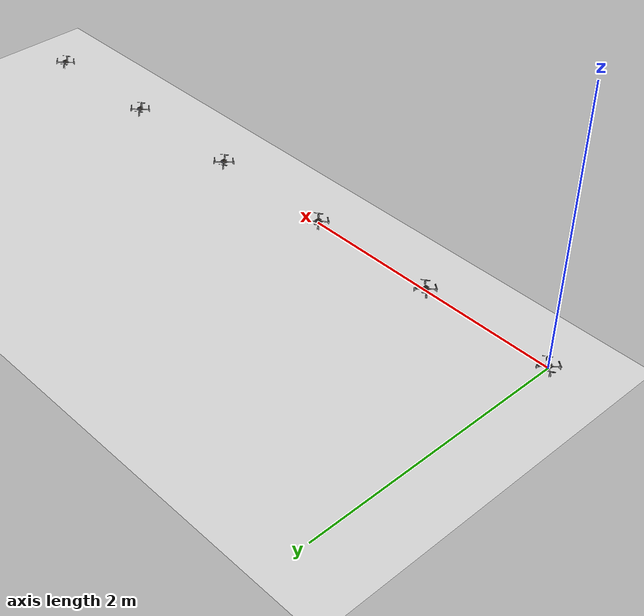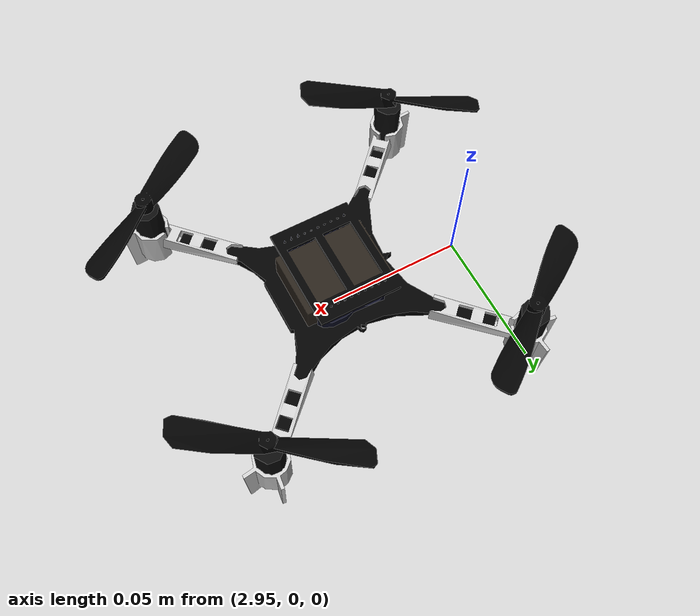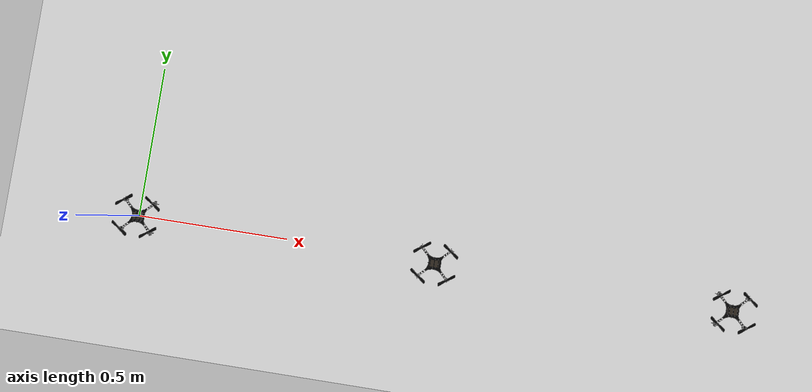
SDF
<?xml version="1.0"?>

<sdf version='1.9'>
  <world name='empty'>
    <physics name='1ms' type='ignored'>
      <max_step_size>0.001</max_step_size>
      <real_time_factor>1.0</real_time_factor>
    </physics>
    <plugin name='ignition::gazebo::systems::Physics' filename='ignition-gazebo-physics-system'/>
    <plugin name='ignition::gazebo::systems::UserCommands' filename='ignition-gazebo-user-commands-system'/>
    <plugin name='ignition::gazebo::systems::SceneBroadcaster' filename='ignition-gazebo-scene-broadcaster-system'/>
    <plugin
      filename="ignition-gazebo-user-commands-system"
      name="ignition::gazebo::systems::UserCommands">
    </plugin>
    <plugin
      filename="ignition-gazebo-sensors-system"
      name="ignition::gazebo::systems::Sensors">
      <render_engine>ogre2</render_engine>
    </plugin>
    <light name='sun' type='directional'>
      <cast_shadows>true</cast_shadows>
      <pose>0 0 10 0 0 0</pose>
      <diffuse>0.8 0.8 0.8 1</diffuse>
      <specular>0.2 0.2 0.2 1</specular>
      <attenuation>
        <range>1000</range>
        <constant>0.9</constant>
        <linear>0.01</linear>
        <quadratic>0.001</quadratic>
      </attenuation>
      <direction>-0.5 0.1 -0.9</direction>
      <spot>
        <inner_angle>0</inner_angle>
        <outer_angle>0</outer_angle>
        <falloff>0</falloff>
      </spot>
    </light>
    <gravity>0 0 0</gravity>
    <magnetic_field>5.5645e-6 22.8758e-6 -42.3884e-6</magnetic_field>
    <atmosphere type='adiabatic'/>
    <scene>
      <ambient>0.4 0.4 0.4 1.0</ambient>
      <background>.7 .7 .7 1</background>
      <shadows>true</shadows>
    </scene>
    <model name='ground_plane'>
      <static>true</static>
      <link name='link'>
        <collision name='collision'>
          <geometry>
            <plane>
              <normal>0 0 1</normal>
              <size>100 100</size>
            </plane>
          </geometry>
          <surface>
            <friction>
              <ode/>
            </friction>
            <bounce/>
            <contact/>
          </surface>
        </collision>
        <visual name='visual'>
          <geometry>
            <plane>
              <normal>0 0 1</normal>
              <size>100 100</size>
            </plane>
          </geometry>
          <material>
            <ambient>0.8 0.8 0.8 1</ambient>
            <diffuse>0.8 0.8 0.8 1</diffuse>
            <specular>0.8 0.8 0.8 1</specular>
          </material>
          <plugin name='__default__' filename='__default__'/>
        </visual>
      </link>
      <plugin name='__default__' filename='__default__'/>
      <pose>0 0 0 0 -0 0</pose>
    </model>
    <include>
      <uri>model://crazyflie</uri>
      <name>crazyflie</name>
      <pose>0 0 0.015 0 0 0</pose>
      <plugin filename="NoPhysicsCrazyflieController"
              name="no_physics_crazyflie_controller::NoPhysicsCrazyflieController">
      </plugin>
    </include>
    <include>
      <uri>model://crazyflie</uri>
      <name>crazyflie1</name>
      <pose>1 0 0.015 0 0 0</pose>
      <plugin filename="NoPhysicsCrazyflieController"
              name="no_physics_crazyflie_controller::NoPhysicsCrazyflieController">
      </plugin>
    </include>
        <include>
      <uri>model://crazyflie</uri>
      <name>crazyflie2</name>
      <pose>2 0 0.015 0 0 0</pose>
      <plugin filename="NoPhysicsCrazyflieController"
              name="no_physics_crazyflie_controller::NoPhysicsCrazyflieController">
      </plugin>
    </include>
        <include>
      <uri>model://crazyflie</uri>
      <name>crazyflie3</name>
      <pose>3 0 0.015 0 0 0</pose>
      <plugin filename="NoPhysicsCrazyflieController"
              name="no_physics_crazyflie_controller::NoPhysicsCrazyflieController">
      </plugin>
    </include>
        <include>
      <uri>model://crazyflie</uri>
      <name>crazyflie4</name>
      <pose>4 0 0.015 0 0 0</pose>
      <plugin filename="NoPhysicsCrazyflieController"
              name="no_physics_crazyflie_controller::NoPhysicsCrazyflieController">
      </plugin>
    </include>
        <include>
      <uri>model://crazyflie</uri>
      <name>crazyflie5</name>
      <pose>5 0 0.015 0 0 0</pose>
      <plugin filename="NoPhysicsCrazyflieController"
              name="no_physics_crazyflie_controller::NoPhysicsCrazyflieController">
      </plugin>
    </include>

  </world>
</sdf>

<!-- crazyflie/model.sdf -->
<sdf version="1.8">
    <model name="crazyflie">
        <pose>0 0 0.0 0 0 3.14</pose>
        <link name="crazyflie/body">
        <inertial>
            <pose frame="">0 0 0 0 0 0</pose>
            <mass>0.025</mass>
            <inertia>
                <ixx>0.000016572</ixx>
                <ixy>0.00</ixy>
                <ixz>0.00</ixz>
                <iyy>0.000016656</iyy>
                <iyz>0.00000</iyz>
                <izz>0.000029262</izz>
            </inertia>
        </inertial>
        <collision name="crazyflie/body_collision">
            <pose frame="">0 0 0 0 0 0</pose>
            <geometry>
                <box>
                    <size>0.10 0.10 0.03</size>
                </box>
            </geometry>
        </collision>
        <visual name="crazyflie/body_visual">
            <pose frame="">0 0 0 0 -0 0</pose>
            <geometry>
                <mesh>
                    <scale>1 1 1</scale>
                    <uri>model://crazyflie/meshes/crazyflie_body.dae</uri>
                </mesh>
            </geometry>
        </visual>
        </link>
        <link name="crazyflie/m1_prop">
            <pose frame="">0.048 -0.048 0.021 0 0 0</pose>
            <inertial>
                <pose frame="">0 0 0 0 -0 0</pose>
                <mass>0.0008</mass>
                <inertia>
                    <ixx>0.000000002*70</ixx>
                    <iyy>0.000000167*70</iyy>
                    <izz>0.000000168*70</izz>
                    <ixy>0</ixy>
                    <ixz>0</ixz>
                    <iyz>0</iyz>
                </inertia>
            </inertial>
            <visual name="crazyflie/m1_visual">
                <pose frame="">0 0 0 0 -0 0</pose>
                <geometry>
                    <mesh>
                        <scale>1 1 1</scale>
                        <uri>model://crazyflie/meshes/crazyflie_ccw_propeller.dae</uri>
                    </mesh>
                </geometry>
            </visual>
        </link>
        <link name="crazyflie/m2_prop">
            <pose frame="">-0.048 -0.048 0.021 0 0 0</pose>
            <inertial>
                <pose frame="">0 0 0 0 -0 0</pose>
                <mass>0.0008</mass>
                <inertia>
                    <ixx>0.000000002*50</ixx>
                    <iyy>0.000000167*50</iyy>
                    <izz>0.000000168*50</izz>
                    <ixy>0</ixy>
                    <ixz>0</ixz>
                    <iyz>0</iyz>
                </inertia>
            </inertial>
            <visual name="crazyflie/m2_visual">
                <pose frame="">0 0 0 0 -0 0</pose>
                <geometry>
                    <mesh>
                        <scale>1 1 1</scale>
                        <uri>model://crazyflie/meshes/crazyflie_cw_propeller.dae</uri>
                    </mesh>
                </geometry>
            </visual>
        </link>
        <link name="crazyflie/m3_prop">
            <pose frame="">-0.048 0.048 0.021 0 0 0</pose>
            <inertial>
                <pose frame="">0 0 0 0 -0 0</pose>
                <mass>0.0008</mass>
                <inertia>
                    <ixx>0.000000002*50</ixx>
                    <iyy>0.000000167*50</iyy>
                    <izz>0.000000168*50</izz>
                    <ixy>0</ixy>
                    <ixz>0</ixz>
                    <iyz>0</iyz>
                </inertia>
            </inertial>
            <visual name="crazyflie/m3_visual">
                <pose frame="">0 0 0 0 -0 0</pose>
                <geometry>
                    <mesh>
                        <scale>1 1 1</scale>
                        <uri>model://crazyflie/meshes/crazyflie_ccw_propeller.dae</uri>
                    </mesh>
                </geometry>
            </visual>
        </link>
        <link name="crazyflie/m4_prop">
            <pose frame="">0.048 0.048 0.021 0 0 0</pose>
            <inertial>
                <pose frame="">0 0 0 0 -0 0</pose>
                <mass>0.0008</mass>
                <inertia>
                    <ixx>0.000000002*50</ixx>
                    <iyy>0.000000167*50</iyy>
                    <izz>0.000000168*50</izz>
                    <ixy>0</ixy>
                    <ixz>0</ixz>
                    <iyz>0</iyz>
                </inertia>
            </inertial>
            <visual name="crazyflie/m4_visual">
                <pose frame="">0 0 0 0 -0 0</pose>
                <geometry>
                    <mesh>
                        <scale>1 1 1</scale>
                        <uri>model://crazyflie/meshes/crazyflie_cw_propeller.dae</uri>
                    </mesh>
                </geometry>
            </visual>
        </link>
        <joint name="crazyflie/m1_joint" type="revolute">
            <child>crazyflie/m1_prop</child>
            <parent>crazyflie/body</parent>
            <axis>
                <xyz>0 0 1</xyz>
                <limit>
                    <lower>-1e+16</lower>
                    <upper>1e+16</upper>
                </limit>
                <dynamics>
                    <spring_reference>0</spring_reference>
                    <spring_stiffness>0</spring_stiffness>
                </dynamics>
                <use_parent_model_frame>1</use_parent_model_frame>
            </axis>
        </joint>
                <joint name="crazyflie/m2_joint" type="revolute">
            <child>crazyflie/m2_prop</child>
            <parent>crazyflie/body</parent>
            <axis>
                <xyz>0 0 1</xyz>
                <limit>
                    <lower>-1e+16</lower>
                    <upper>1e+16</upper>
                </limit>
                <dynamics>
                    <spring_reference>0</spring_reference>
                    <spring_stiffness>0</spring_stiffness>
                </dynamics>
                <use_parent_model_frame>1</use_parent_model_frame>
            </axis>
        </joint>
                <joint name="crazyflie/m3_joint" type="revolute">
            <child>crazyflie/m3_prop</child>
            <parent>crazyflie/body</parent>
            <axis>
                <xyz>0 0 1</xyz>
                <limit>
                    <lower>-1e+16</lower>
                    <upper>1e+16</upper>
                </limit>
                <dynamics>
                    <spring_reference>0</spring_reference>
                    <spring_stiffness>0</spring_stiffness>
                </dynamics>
                <use_parent_model_frame>1</use_parent_model_frame>
            </axis>
        </joint>
        <joint name="crazyflie/m4_joint" type="revolute">
            <child>crazyflie/m4_prop</child>
            <parent>crazyflie/body</parent>
            <axis>
                <xyz>0 0 1</xyz>
                <limit>
                    <lower>-1e+16</lower>
                    <upper>1e+16</upper>
                </limit>
                <dynamics>
                    <spring_reference>0</spring_reference>
                    <spring_stiffness>0</spring_stiffness>
                </dynamics>
                <use_parent_model_frame>1</use_parent_model_frame>
            </axis>
        </joint>
    <plugin
        filename="ignition-gazebo-multicopter-motor-model-system"
        name="ignition::gazebo::systems::MulticopterMotorModel">
        <robotNamespace>crazyflie</robotNamespace>
        <jointName>crazyflie/m1_joint</jointName>
        <linkName>crazyflie/m1_prop</linkName>
        <turningDirection>ccw</turningDirection>
        <timeConstantUp>0.0125</timeConstantUp>
        <timeConstantDown>0.025</timeConstantDown>
        <maxRotVelocity>2618</maxRotVelocity>
        <motorConstant>1.2819184e-8</motorConstant>
        <momentConstant>0.005964552</momentConstant>
        <commandSubTopic>gazebo/command/motor_speed</commandSubTopic>
        <motorNumber>0</motorNumber>
        <rotorDragCoefficient>8.06428e-05</rotorDragCoefficient>
        <rollingMomentCoefficient>0.000001</rollingMomentCoefficient>
        <motorSpeedPubTopic>motor_speed/0</motorSpeedPubTopic>
        <rotorVelocitySlowdownSim>150</rotorVelocitySlowdownSim>
        <motorType>velocity</motorType>
      </plugin>
      <plugin
        filename="ignition-gazebo-multicopter-motor-model-system"
        name="ignition::gazebo::systems::MulticopterMotorModel">
        <robotNamespace>crazyflie</robotNamespace>
        <jointName>crazyflie/m2_joint</jointName>
        <linkName>crazyflie/m2_prop</linkName>
        <turningDirection>cw</turningDirection>
        <timeConstantUp>0.0125</timeConstantUp>
        <timeConstantDown>0.025</timeConstantDown>
        <maxRotVelocity>2618</maxRotVelocity>
        <motorConstant>1.2819184e-8</motorConstant>
        <momentConstant>0.005964552</momentConstant>
        <commandSubTopic>gazebo/command/motor_speed</commandSubTopic>
        <motorNumber>1</motorNumber>
        <rotorDragCoefficient>8.06428e-05</rotorDragCoefficient>
        <rollingMomentCoefficient>0.000001</rollingMomentCoefficient>
        <motorSpeedPubTopic>motor_speed/1</motorSpeedPubTopic>
        <rotorVelocitySlowdownSim>150</rotorVelocitySlowdownSim>
        <motorType>velocity</motorType>
      </plugin>
      <plugin
        filename="ignition-gazebo-multicopter-motor-model-system"
        name="ignition::gazebo::systems::MulticopterMotorModel">
        <robotNamespace>crazyflie</robotNamespace>
        <jointName>crazyflie/m3_joint</jointName>
        <linkName>crazyflie/m3_prop</linkName>
        <turningDirection>ccw</turningDirection>
        <timeConstantUp>0.0125</timeConstantUp>
        <timeConstantDown>0.025</timeConstantDown>
        <maxRotVelocity>2618</maxRotVelocity>
        <motorConstant>1.2819184e-8</motorConstant>
        <momentConstant>0.005964552</momentConstant>
        <commandSubTopic>gazebo/command/motor_speed</commandSubTopic>
        <motorNumber>2</motorNumber>
        <rotorDragCoefficient>8.06428e-05</rotorDragCoefficient>
        <rollingMomentCoefficient>0.000001</rollingMomentCoefficient>
        <motorSpeedPubTopic>motor_speed/2</motorSpeedPubTopic>
        <rotorVelocitySlowdownSim>150</rotorVelocitySlowdownSim>
        <motorType>velocity</motorType>
      </plugin>
      <plugin
        filename="ignition-gazebo-multicopter-motor-model-system"
        name="ignition::gazebo::systems::MulticopterMotorModel">
        <robotNamespace>crazyflie</robotNamespace>
        <jointName>crazyflie/m4_joint</jointName>
        <linkName>crazyflie/m4_prop</linkName>
        <turningDirection>cw</turningDirection>
        <timeConstantUp>0.0125</timeConstantUp>
        <timeConstantDown>0.025</timeConstantDown>
        <maxRotVelocity>2618</maxRotVelocity>
        <motorConstant>1.2819184e-8</motorConstant>
        <momentConstant>0.005964552</momentConstant>
        <commandSubTopic>gazebo/command/motor_speed</commandSubTopic>
        <motorNumber>3</motorNumber>
        <rotorDragCoefficient>8.06428e-05</rotorDragCoefficient>
        <rollingMomentCoefficient>0.000001</rollingMomentCoefficient>
        <motorSpeedPubTopic>motor_speed/3</motorSpeedPubTopic>
        <rotorVelocitySlowdownSim>150</rotorVelocitySlowdownSim>
        <motorType>velocity</motorType>
      </plugin>
      <plugin
        filename="ignition-gazebo-multicopter-control-system"
        name="ignition::gazebo::systems::MulticopterVelocityControl">
        <robotNamespace>crazyflie</robotNamespace>
        <commandSubTopic>gazebo/command/twist</commandSubTopic>
        <enableSubTopic>enable</enableSubTopic>
        <comLinkName>crazyflie/body</comLinkName>
        <velocityGain>1000 1000 1000</velocityGain>
        <attitudeGain>4 4 1</attitudeGain>
        <angularRateGain>4 4 1</angularRateGain>

        <rotorConfiguration>
          <rotor>
            <jointName>crazyflie/m1_joint</jointName>
            <forceConstant>8.0e-9</forceConstant>
            <momentConstant>0.016</momentConstant>
            <direction>1</direction>
          </rotor>
          <rotor>
            <jointName>crazyflie/m2_joint</jointName>
            <forceConstant>8.0e-9</forceConstant>
            <momentConstant>0.016</momentConstant>
            <direction>-1</direction>
          </rotor>
          <rotor>
            <jointName>crazyflie/m3_joint</jointName>
            <forceConstant>8.0e-9</forceConstant>
            <momentConstant>0.016</momentConstant>
            <direction>1</direction>
          </rotor>
          <rotor>
            <jointName>crazyflie/m4_joint</jointName>
            <forceConstant>8.0e-9</forceConstant>
            <momentConstant>0.016</momentConstant>
            <direction>-1</direction>
          </rotor>
        </rotorConfiguration>
      </plugin>
      <plugin
        filename="ignition-gazebo-odometry-publisher-system"
        name="ignition::gazebo::systems::OdometryPublisher">
        <dimensions>3</dimensions>
      </plugin>
    </model>
</sdf>
